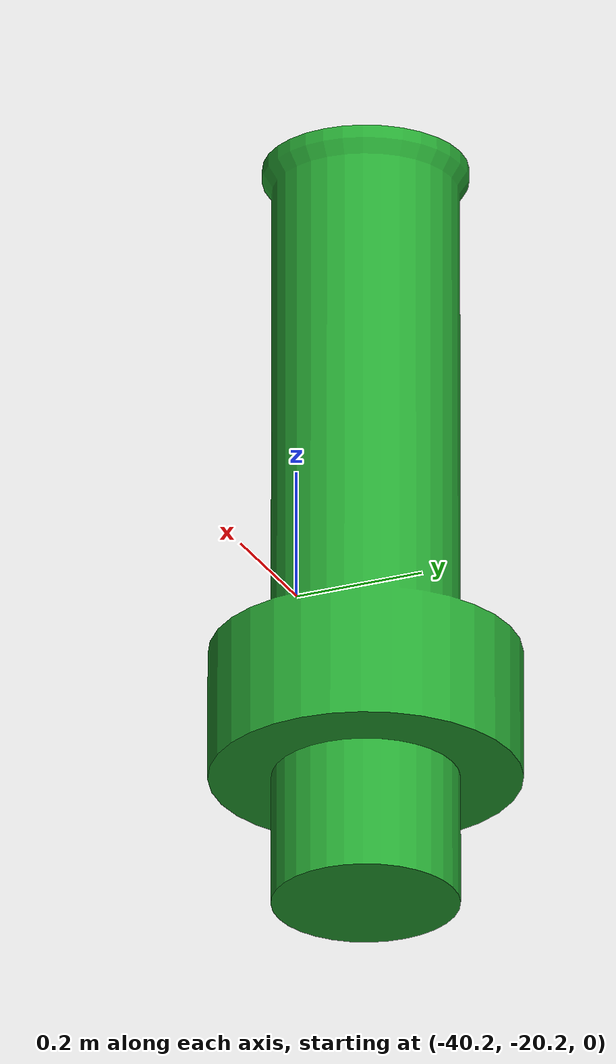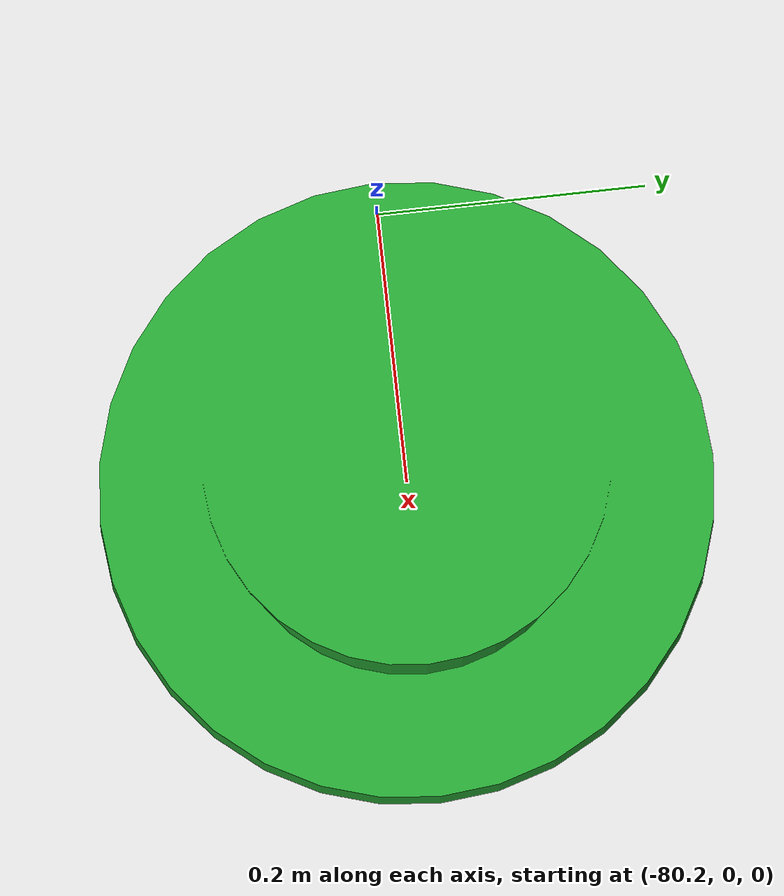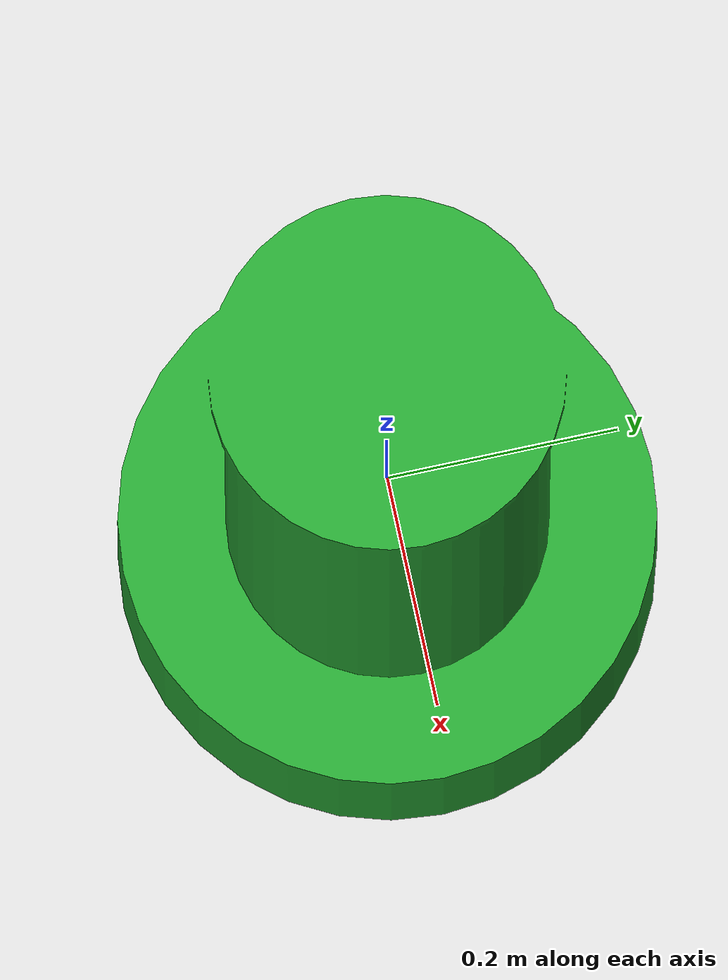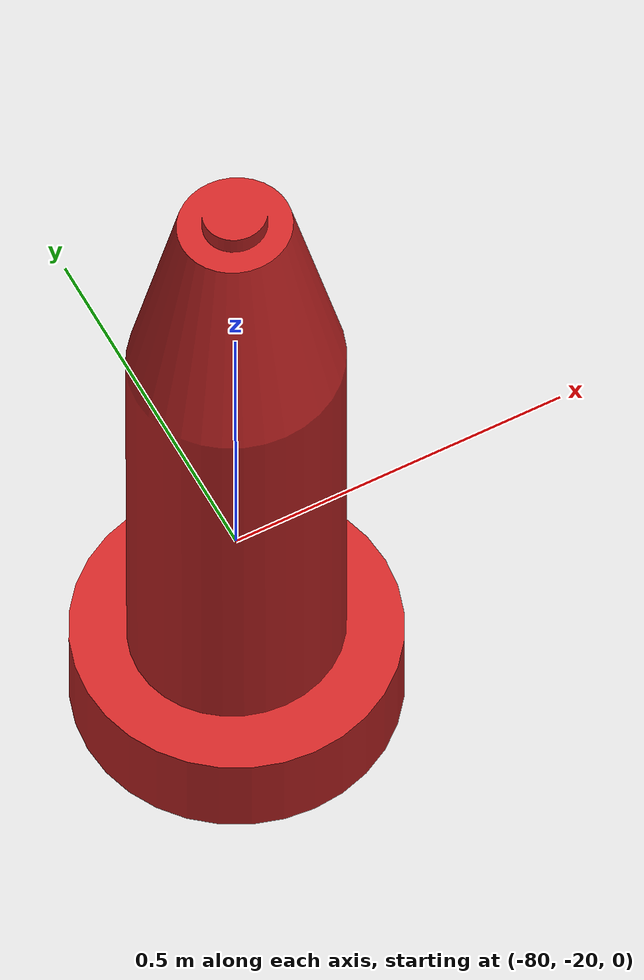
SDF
<?xml version="1.0"?>
<!-- Model for the short navigation course -->
<sdf version="1.6">
  <model name="staggered_gates_0">

    <!-- Starboard_border -->
    <include>
      <name>red_bound_0</name>
      <pose>0 0 0 0 0 0</pose>
      <uri>model://surmark950400</uri>
    </include>

    <include>
      <name>red_bound_1</name>
      <pose>-40 -20 0 0 0 0</pose>
      <uri>model://surmark950400</uri>
    </include>

    <include>
      <name>red_bound_2</name>
      <pose>-80 0 0 0 0 0</pose>
      <uri>model://surmark950400</uri>
    </include>

    <!-- Port_border -->
    <include>
      <name>green_bound_0</name>
      <pose>0 -20 0.2 0 0 0</pose>
      <uri>model://surmark950410</uri>
    </include>

    <include>
      <name>green_bound_1</name>
      <pose>-40 -40 0.2 0 0 0</pose>
      <uri>model://surmark950410</uri>
    </include>

    <include>
      <name>green_bound_2</name>
      <pose>-80 -20 0.2 0 0 0</pose>
      <uri>model://surmark950410</uri>
    </include>
  </model>

</sdf>

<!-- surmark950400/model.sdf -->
<sdf version="1.6">
  <model name="surmark950400">
    <link name="link">
      <inertial>
        <pose>0 0 -2 0 0 0</pose>
        <!-- Mass determined based on buoyancy geometry so object
             floats at mid-point of sphere -->
        <mass>25</mass>
        <!-- Mark only - based on cylinder -->
        <inertia>
          <ixx>1.0</ixx>
          <ixy>0</ixy>
          <ixz>0</ixz>
          <iyy>1.0</iyy>
          <iyz>0</iyz>
          <izz>0.1</izz>
        </inertia>
      </inertial>
      <collision name="collision_inner">
        <pose>0 0 -0.02 0 0 0</pose>
        <geometry>
          <cylinder>
            <radius>0.15</radius>
            <length>1.18</length>
          </cylinder>
        </geometry>
      </collision>
      <collision name="collision_outer">
        <pose>0 0 -0.31 0 0 0</pose>
        <geometry>
          <cylinder>
            <radius>0.24</radius>
            <length>0.2</length>
          </cylinder>
        </geometry>
      </collision>
      <visual name="visual">
        <geometry>
	        <mesh><uri>model://surmark950400/mesh/surmark950400.dae</uri></mesh>
        </geometry>
        <material>
          <script>
            <uri>model://surmark950400/materials/scripts/surmark950400.material</uri>
            <name>surmark950400/Green</name>
          </script>
        </material>
      </visual>
    </link>

    <plugin name="BuoyancyPlugin" filename="libbuoyancy_gazebo_plugin.so">
      <wave_model>ocean_waves</wave_model>
      <fluid_density>1000</fluid_density>
      <fluid_level>0.0</fluid_level>
      <linear_drag>25.0</linear_drag>
      <angular_drag>2.0</angular_drag>
      <buoyancy name="buoyancy_sphere">
        <link_name>link</link_name>
        <pose>0 0 -0.31 0 0 0</pose>
        <geometry>
          <sphere>
            <radius>0.23</radius>
          </sphere>
        </geometry>
      </buoyancy>
    </plugin>

  </model>
</sdf>

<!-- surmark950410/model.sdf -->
<sdf version="1.6">
  <model name="surmark950410">
    <link name="link">
      <inertial>
        <pose>0 0 -2 0 0 0</pose>
        <!-- Mass determined based on buoyancy geometry so object
             floats at mid-point of sphere -->
        <mass>25</mass>
        <!-- Mark only - based on cylinder -->
        <inertia>
          <ixx>1.0</ixx>
          <ixy>0</ixy>
          <ixz>0</ixz>
          <iyy>1.0</iyy>
          <iyz>0</iyz>
          <izz>0.1</izz>
        </inertia>
      </inertial>
      <collision name="collision_inner">
        <pose>0 0 -0.01 0 0 0</pose>
        <geometry>
          <cylinder>
            <radius>0.15</radius>
            <length>1.26</length>
          </cylinder>
        </geometry>
      </collision>
      <collision name="collision_outer">
        <pose>0 0 -0.48 0 0 0</pose>
        <geometry>
          <cylinder>
            <radius>0.24</radius>
            <length>0.15</length>
          </cylinder>
        </geometry>
      </collision>
      <visual name="visual">
        <geometry>
	        <mesh><uri>model://surmark950410/mesh/surmark950410.dae</uri></mesh>
        </geometry>
        <material>
          <script>
            <uri>model://surmark950410/materials/scripts/surmark950410.material</uri>
            <name>surmark950410/Red</name>
          </script>
        </material>
      </visual>
    </link>

    <plugin name="BuoyancyPlugin" filename="libbuoyancy_gazebo_plugin.so">
      <wave_model>ocean_waves</wave_model>
      <fluid_density>1000</fluid_density>
      <fluid_level>0.0</fluid_level>
      <linear_drag>25.0</linear_drag>
      <angular_drag>2.0</angular_drag>
      <buoyancy name="buoyancy_sphere">
        <link_name>link</link_name>
        <pose>0 0 -0.48 0 0 0</pose>
        <geometry>
          <sphere>
            <radius>0.23</radius>
          </sphere>
        </geometry>
      </buoyancy>
    </plugin>

  </model>
</sdf>
